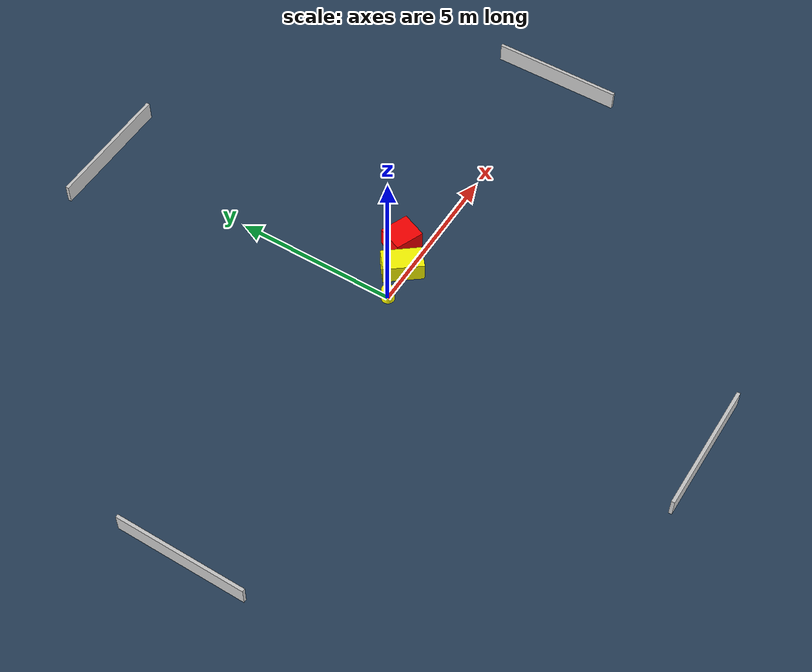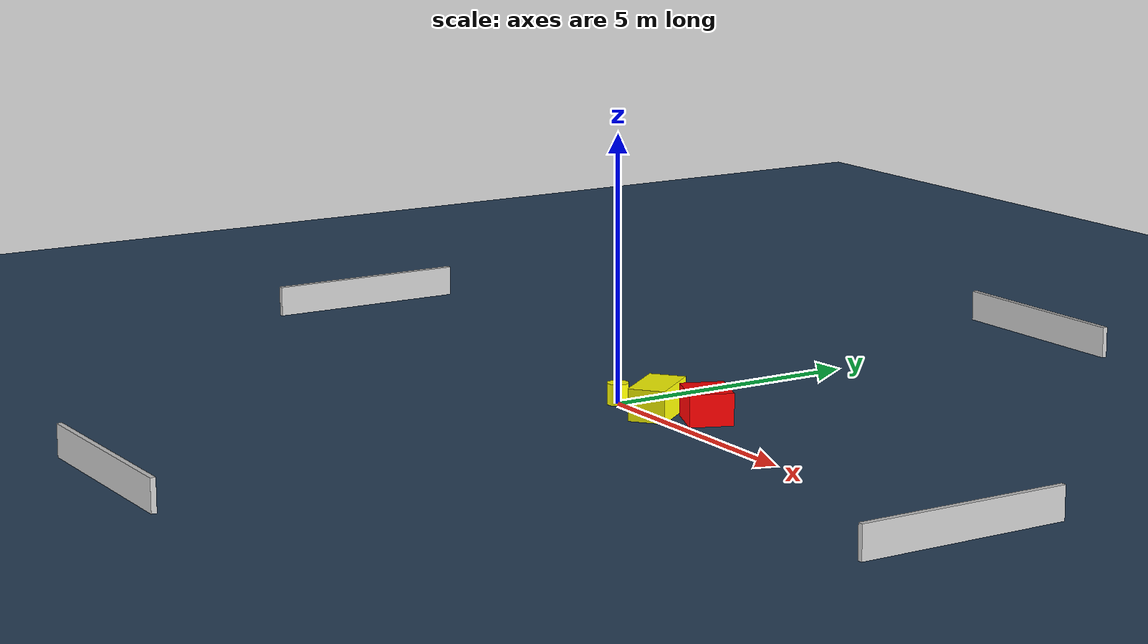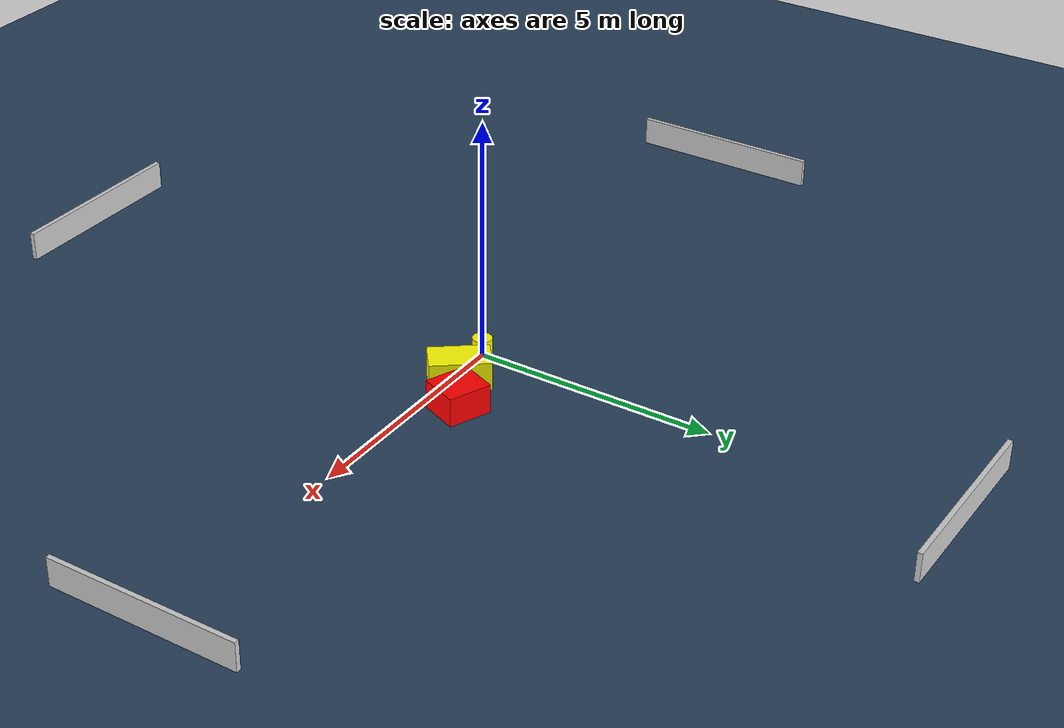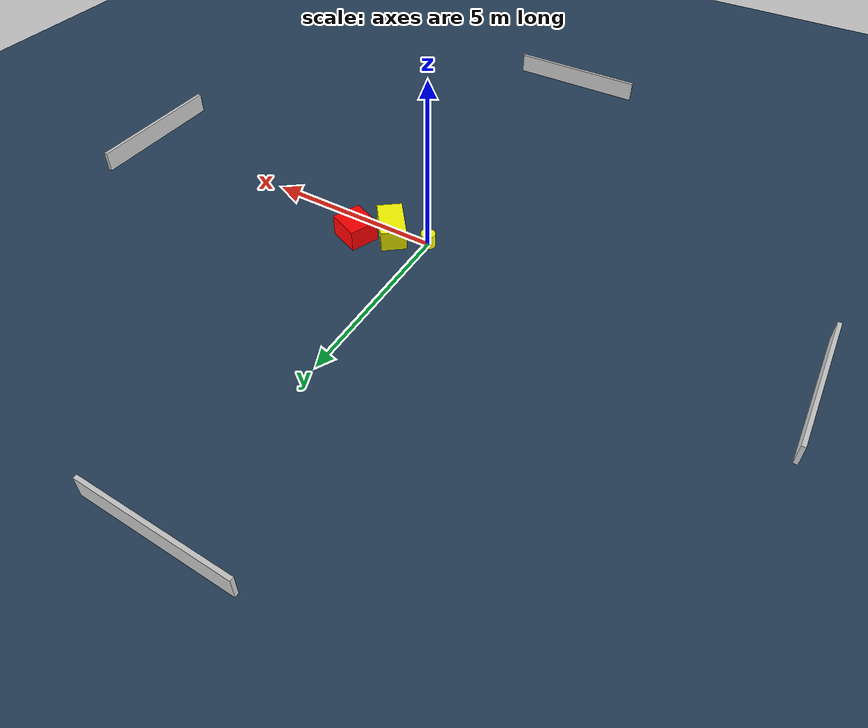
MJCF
<?xml version="1.0" ?>
<mujoco model="generated_environment">
  <option timestep="0.01" integrator="RK4" cone="elliptic"/>
  <default>
    <geom density="1"/>
  </default>
  <asset>
    <texture builtin="gradient" height="3072" name="skybox" rgb1="0.3 0.5 0.7" rgb2="0 0 0" type="skybox" width="512"/>
    <texture builtin="checker" height="300" name="groundplane" rgb1="0.2 0.3 0.4" rgb2="0.1 0.2 0.3" type="2d" width="300"/>
    <material name="groundplane" reflectance="0.2" texrepeat="5 5" texture="groundplane"/>
  </asset>
  <worldbody>
    <light dir="0 0 -1" directional="true" pos="0 0 1.5"/>
    <geom condim="3" friction="0.5 0.005 0.001" material="groundplane" name="floor" pos="0 0 0" size="0 0 0.05" type="plane"/>
    <body name="walls">
      <geom name="wall_1" condim="4" pos="-10.0 0.0 0.3" rgba="0.800000011920929 0.800000011920929 0.800000011920929 1.0" size="0.05 2.0 0.3" type="box"/>
      <geom name="wall_2" condim="4" pos="10.0 0.0 0.3" rgba="0.800000011920929 0.800000011920929 0.800000011920929 1.0" size="0.05 2.0 0.3" type="box"/>
      <geom name="wall_3" condim="4" pos="0.0 -10.0 0.3" rgba="0.800000011920929 0.800000011920929 0.800000011920929 1.0" size="2.0 0.05 0.3" type="box"/>
      <geom name="wall_4" condim="4" pos="0.0 10.0 0.3" rgba="0.800000011920929 0.800000011920929 0.800000011920929 1.0" size="2.0 0.05 0.3" type="box"/>
    </body>
    <body name="robot">
      <joint name="joint_x" type="slide" pos="0 0 0" axis="1 0 0"/>
      <joint name="joint_y" type="slide" pos="0 0 0" axis="0 1 0"/>
      <geom name="robot" type="cylinder" pos="0.0 0.0 0.2" size="0.2 0.2 0.0" mass="5.0" friction="1.0 0.005 0.0001" condim="4" rgba="1.0 1.0 0.0 1.0"/>
    </body>
    <body name="obstacle_1_movable">
      <geom name="obstacle_1_movable" condim="4" pos="1.0513402414015383 0.1684506964648286 0.3" euler="0 0 128.28389091101877" friction="0.0 0.005 0.001" rgba="1.0 1.0 0.0 1.0" size="0.6111360048144234 0.34623840195083133 0.3" type="box" mass="0.1"/>
      <joint type="free"/>
    </body>
    <body name="obstacle_2_static">
      <geom name="obstacle_2_static" condim="4" pos="1.8720781947073 0.6970778801821595 0.3" euler="0 0 247.7775711536016" friction="0.0 0.005 0.001" rgba="1.0 0.0 0.0 1.0" size="0.40783247340639683 0.4525174959772336 0.3" type="box"/>
    </body>
  </worldbody>
  <actuator>
    <motor name="actuator_x" joint="joint_x" gear="1" ctrlrange="-1 1"/>
    <motor name="actuator_y" joint="joint_y" gear="1" ctrlrange="-1 1"/>
  </actuator>
</mujoco>
